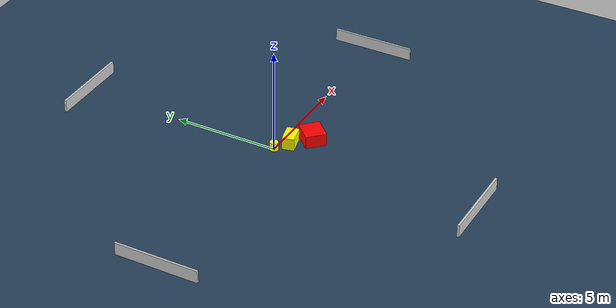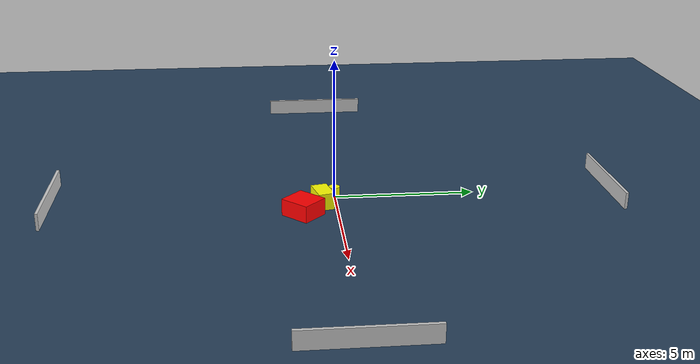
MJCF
<?xml version="1.0" ?>
<mujoco model="generated_environment">
  <option timestep="0.01" integrator="RK4" cone="elliptic"/>
  <default>
    <geom density="1"/>
  </default>
  <asset>
    <texture builtin="gradient" height="3072" name="skybox" rgb1="0.3 0.5 0.7" rgb2="0 0 0" type="skybox" width="512"/>
    <texture builtin="checker" height="300" name="groundplane" rgb1="0.2 0.3 0.4" rgb2="0.1 0.2 0.3" type="2d" width="300"/>
    <material name="groundplane" reflectance="0.2" texrepeat="5 5" texture="groundplane"/>
  </asset>
  <worldbody>
    <light dir="0 0 -1" directional="true" pos="0 0 1.5"/>
    <geom condim="3" friction="0.5 0.005 0.001" material="groundplane" name="floor" pos="0 0 0" size="0 0 0.05" type="plane"/>
    <body name="walls">
      <geom name="wall_1" condim="4" pos="-10.0 0.0 0.3" rgba="0.800000011920929 0.800000011920929 0.800000011920929 1.0" size="0.05 2.0 0.3" type="box"/>
      <geom name="wall_2" condim="4" pos="10.0 0.0 0.3" rgba="0.800000011920929 0.800000011920929 0.800000011920929 1.0" size="0.05 2.0 0.3" type="box"/>
      <geom name="wall_3" condim="4" pos="0.0 -10.0 0.3" rgba="0.800000011920929 0.800000011920929 0.800000011920929 1.0" size="2.0 0.05 0.3" type="box"/>
      <geom name="wall_4" condim="4" pos="0.0 10.0 0.3" rgba="0.800000011920929 0.800000011920929 0.800000011920929 1.0" size="2.0 0.05 0.3" type="box"/>
    </body>
    <body name="robot">
      <joint name="joint_x" type="slide" pos="0 0 0" axis="1 0 0"/>
      <joint name="joint_y" type="slide" pos="0 0 0" axis="0 1 0"/>
      <geom name="robot" type="cylinder" pos="0.0 0.0 0.2" size="0.2 0.2 0.0" mass="5.0" friction="1.0 0.005 0.0001" condim="4" rgba="1.0 1.0 0.0 1.0"/>
    </body>
    <body name="obstacle_1_movable">
      <geom name="obstacle_1_movable" condim="4" pos="0.7074540853479501 -0.4673196837762452 0.3" euler="0 0 103.59110191584627" friction="0.0 0.005 0.001" rgba="1.0 1.0 0.0 1.0" size="0.28484816984805106 0.4754383230744912 0.3" type="box" mass="0.1"/>
      <joint type="free"/>
    </body>
    <body name="obstacle_2_static">
      <geom name="obstacle_2_static" condim="4" pos="1.4705322543036887 -1.1861304939910349 0.3" euler="0 0 45.998013678571695" friction="0.0 0.005 0.001" rgba="1.0 0.0 0.0 1.0" size="0.5492957107885471 0.4990030751989151 0.3" type="box"/>
    </body>
  </worldbody>
  <actuator>
    <motor name="actuator_x" joint="joint_x" gear="1" ctrlrange="-1 1"/>
    <motor name="actuator_y" joint="joint_y" gear="1" ctrlrange="-1 1"/>
  </actuator>
</mujoco>
